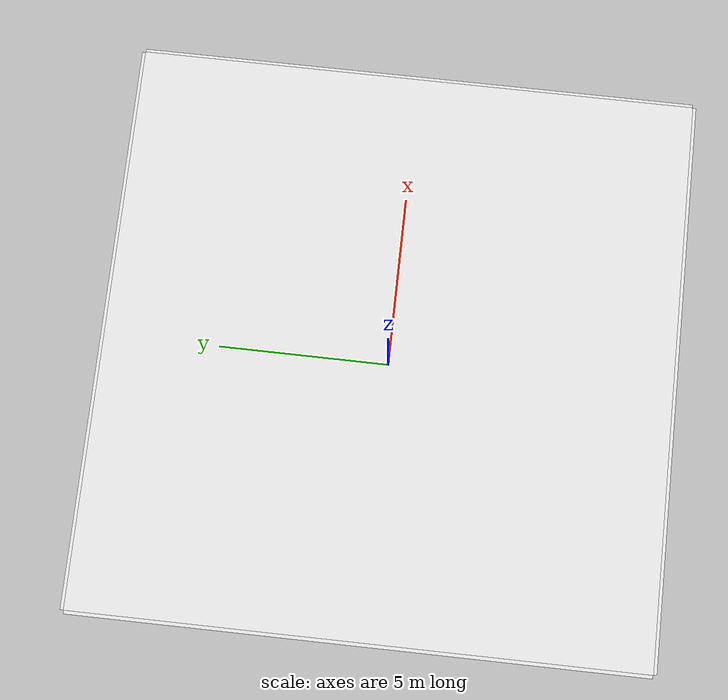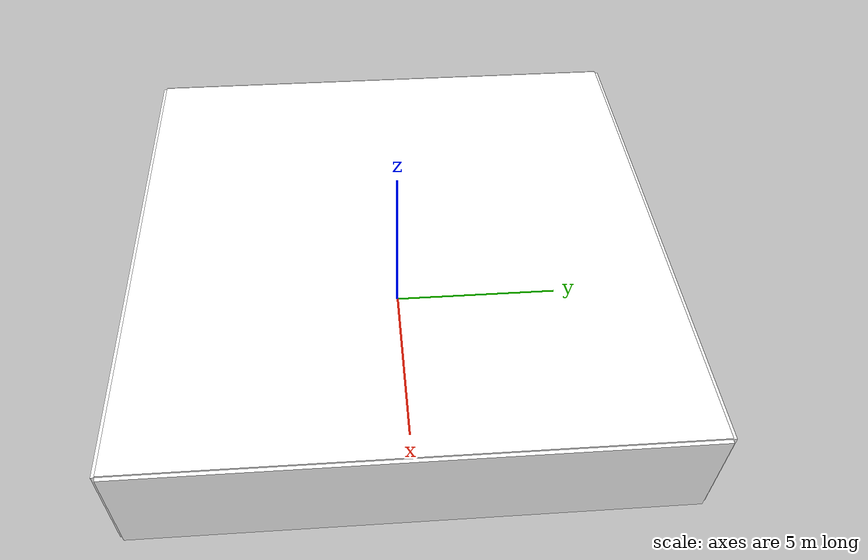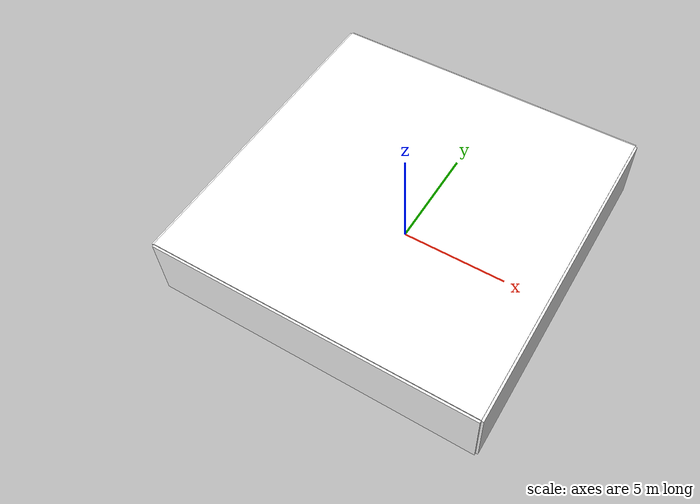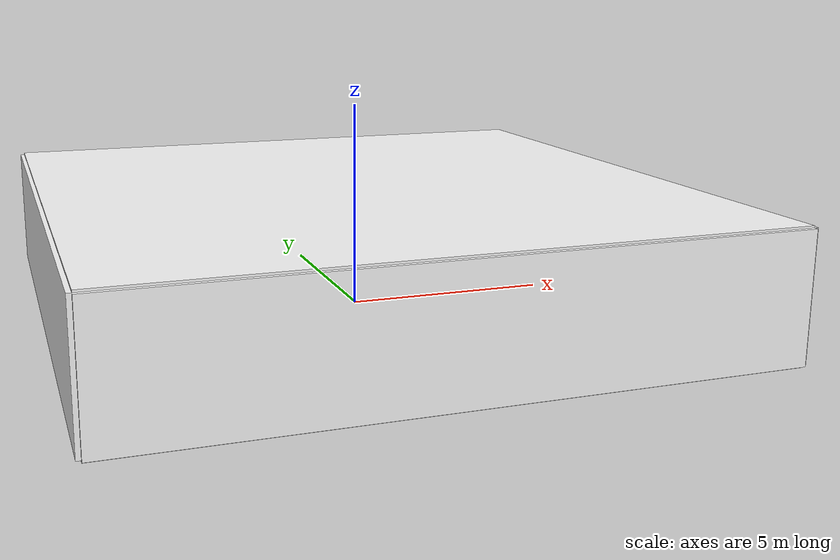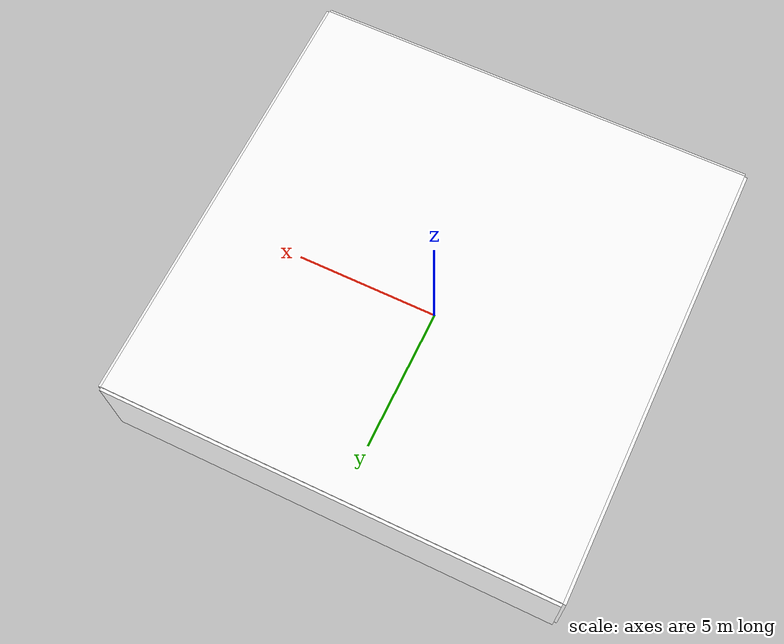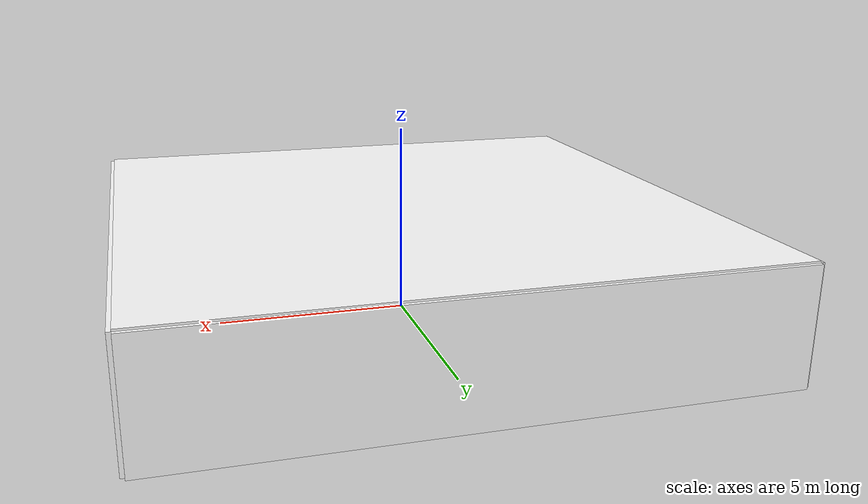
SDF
<?xml version="1.0" ?>
<sdf version="1.6">
  <world name="white_room_world">
    <physics name="default" type="ode">
      <max_step_size>0.001</max_step_size>
      <real_time_factor>1.0</real_time_factor>
    </physics>

    <scene>
      <ambient>0.8 0.8 0.8</ambient>
      <background>0.9 0.9 0.9</background>
      <shadows>true</shadows>
    </scene>

    <!-- Main lighting -->
    <light type="directional" name="sun">
      <cast_shadows>true</cast_shadows>
      <pose>0 0 10 0 0 0</pose>
      <diffuse>0.9 0.9 0.9 1</diffuse>
      <specular>0.3 0.3 0.3 1</specular>
      <attenuation>
        <range>1000</range>
        <constant>0.9</constant>
        <linear>0.01</linear>
        <quadratic>0.001</quadratic>
      </attenuation>
      <direction>-0.3 0.1 -0.9</direction>
    </light>

    <!-- Additional ceiling lights for better interior lighting -->
    <light type="point" name="ceiling_light_1">
      <pose>3 3 2.8 0 0 0</pose>
      <diffuse>0.7 0.7 0.7 1</diffuse>
      <specular>0.2 0.2 0.2 1</specular>
      <attenuation>
        <range>10</range>
        <constant>0.5</constant>
        <linear>0.1</linear>
        <quadratic>0.01</quadratic>
      </attenuation>
    </light>

    <light type="point" name="ceiling_light_2">
      <pose>-3 3 2.8 0 0 0</pose>
      <diffuse>0.7 0.7 0.7 1</diffuse>
      <specular>0.2 0.2 0.2 1</specular>
      <attenuation>
        <range>10</range>
        <constant>0.5</constant>
        <linear>0.1</linear>
        <quadratic>0.01</quadratic>
      </attenuation>
    </light>

    <light type="point" name="ceiling_light_3">
      <pose>3 -3 2.8 0 0 0</pose>
      <diffuse>0.7 0.7 0.7 1</diffuse>
      <specular>0.2 0.2 0.2 1</specular>
      <attenuation>
        <range>10</range>
        <constant>0.5</constant>
        <linear>0.1</linear>
        <quadratic>0.01</quadratic>
      </attenuation>
    </light>

    <light type="point" name="ceiling_light_4">
      <pose>-3 -3 2.8 0 0 0</pose>
      <diffuse>0.7 0.7 0.7 1</diffuse>
      <specular>0.2 0.2 0.2 1</specular>
      <attenuation>
        <range>10</range>
        <constant>0.5</constant>
        <linear>0.1</linear>
        <quadratic>0.01</quadratic>
      </attenuation>
    </light>

    <!-- White floor (15x15m) -->
    <model name="floor">
      <static>true</static>
      <pose>0 0 0 0 0 0</pose>
      <link name="floor_link">
        <collision name="floor_collision">
          <geometry>
            <box>
              <size>15 15 0.1</size>
            </box>
          </geometry>
        </collision>
        <visual name="floor_visual">
          <geometry>
            <box>
              <size>15 15 0.1</size>
            </box>
          </geometry>
          <material>
            <ambient>0.95 0.95 0.95 1</ambient>
            <diffuse>0.95 0.95 0.95 1</diffuse>
            <specular>0.1 0.1 0.1 1</specular>
          </material>
        </visual>
      </link>
    </model>

    <!-- Walls -->
    <!-- North wall -->
    <model name="north_wall">
      <static>true</static>
      <pose>0 7.5 1.5 0 0 0</pose>
      <link name="wall_link">
        <collision name="wall_collision">
          <geometry>
            <box>
              <size>15 0.2 3</size>
            </box>
          </geometry>
        </collision>
        <visual name="wall_visual">
          <geometry>
            <box>
              <size>15 0.2 3</size>
            </box>
          </geometry>
          <material>
            <ambient>0.98 0.98 0.98 1</ambient>
            <diffuse>0.98 0.98 0.98 1</diffuse>
            <specular>0.1 0.1 0.1 1</specular>
          </material>
        </visual>
      </link>
    </model>

    <!-- South wall -->
    <model name="south_wall">
      <static>true</static>
      <pose>0 -7.5 1.5 0 0 0</pose>
      <link name="wall_link">
        <collision name="wall_collision">
          <geometry>
            <box>
              <size>15 0.2 3</size>
            </box>
          </geometry>
        </collision>
        <visual name="wall_visual">
          <geometry>
            <box>
              <size>15 0.2 3</size>
            </box>
          </geometry>
          <material>
            <ambient>0.98 0.98 0.98 1</ambient>
            <diffuse>0.98 0.98 0.98 1</diffuse>
            <specular>0.1 0.1 0.1 1</specular>
          </material>
        </visual>
      </link>
    </model>

    <!-- East wall -->
    <model name="east_wall">
      <static>true</static>
      <pose>7.5 0 1.5 0 0 0</pose>
      <link name="wall_link">
        <collision name="wall_collision">
          <geometry>
            <box>
              <size>0.2 15 3</size>
            </box>
          </geometry>
        </collision>
        <visual name="wall_visual">
          <geometry>
            <box>
              <size>0.2 15 3</size>
            </box>
          </geometry>
          <material>
            <ambient>0.98 0.98 0.98 1</ambient>
            <diffuse>0.98 0.98 0.98 1</diffuse>
            <specular>0.1 0.1 0.1 1</specular>
          </material>
        </visual>
      </link>
    </model>

    <!-- West wall -->
    <model name="west_wall">
      <static>true</static>
      <pose>-7.5 0 1.5 0 0 0</pose>
      <link name="wall_link">
        <collision name="wall_collision">
          <geometry>
            <box>
              <size>0.2 15 3</size>
            </box>
          </geometry>
        </collision>
        <visual name="wall_visual">
          <geometry>
            <box>
              <size>0.2 15 3</size>
            </box>
          </geometry>
          <material>
            <ambient>0.98 0.98 0.98 1</ambient>
            <diffuse>0.98 0.98 0.98 1</diffuse>
            <specular>0.1 0.1 0.1 1</specular>
          </material>
        </visual>
      </link>
    </model>

    <!-- Ceiling -->
    <model name="ceiling">
      <static>true</static>
      <pose>0 0 3 0 0 0</pose>
      <link name="ceiling_link">
        <collision name="ceiling_collision">
          <geometry>
            <box>
              <size>15 15 0.1</size>
            </box>
          </geometry>
        </collision>
        <visual name="ceiling_visual">
          <geometry>
            <box>
              <size>15 15 0.1</size>
            </box>
          </geometry>
          <material>
            <ambient>0.98 0.98 0.98 1</ambient>
            <diffuse>0.98 0.98 0.98 1</diffuse>
            <specular>0.1 0.1 0.1 1</specular>
          </material>
        </visual>
      </link>
    </model>

    <!-- Furniture Models -->

    <!-- Couch 1 (L-shaped, main seating area) -->
    <model name="couch_1">
      <static>true</static>
      <pose>-4 4 0.4 0 0 0</pose>
      <link name="couch_link">
        <!-- Main couch body -->
        <visual name="couch_body">
          <geometry>
            <box>
              <size>2.5 1 0.8</size>
            </box>
          </geometry>
          <material>
            <ambient>0.4 0.4 0.4 1</ambient>
            <diffuse>0.4 0.4 0.4 1</diffuse>
            <specular>0.1 0.1 0.1 1</specular>
          </material>
        </visual>
        <collision name="couch_collision">
          <geometry>
            <box>
              <size>2.5 1 0.8</size>
            </box>
          </geometry>
        </collision>

        <!-- Couch back -->
        <visual name="couch_back">
          <pose>0 -0.45 0.4 0 0 0</pose>
          <geometry>
            <box>
              <size>2.5 0.1 0.8</size>
            </box>
          </geometry>
          <material>
            <ambient>0.35 0.35 0.35 1</ambient>
            <diffuse>0.35 0.35 0.35 1</diffuse>
          </material>
        </visual>

        <!-- Couch arms -->
        <visual name="couch_arm_left">
          <pose>-1.2 0 0.2 0 0 0</pose>
          <geometry>
            <box>
              <size>0.1 1 0.4</size>
            </box>
          </geometry>
          <material>
            <ambient>0.35 0.35 0.35 1</ambient>
            <diffuse>0.35 0.35 0.35 1</diffuse>
          </material>
        </visual>

        <visual name="couch_arm_right">
          <pose>1.2 0 0.2 0 0 0</pose>
          <geometry>
            <box>
              <size>0.1 1 0.4</size>
            </box>
          </geometry>
          <material>
            <ambient>0.35 0.35 0.35 1</ambient>
            <diffuse>0.35 0.35 0.35 1</diffuse>
          </material>
        </visual>
      </link>
    </model>

    <!-- Couch 2 (smaller, opposite side) -->
    <model name="couch_2">
      <static>true</static>
      <pose>4 -3 0.4 0 0 1.57</pose>
      <link name="couch_link">
        <visual name="couch_body">
          <geometry>
            <box>
              <size>2 1 0.8</size>
            </box>
          </geometry>
          <material>
            <ambient>0.3 0.3 0.5 1</ambient>
            <diffuse>0.3 0.3 0.5 1</diffuse>
            <specular>0.1 0.1 0.1 1</specular>
          </material>
        </visual>
        <collision name="couch_collision">
          <geometry>
            <box>
              <size>2 1 0.8</size>
            </box>
          </geometry>
        </collision>

        <visual name="couch_back">
          <pose>0 -0.45 0.4 0 0 0</pose>
          <geometry>
            <box>
              <size>2 0.1 0.8</size>
            </box>
          </geometry>
          <material>
            <ambient>0.25 0.25 0.45 1</ambient>
            <diffuse>0.25 0.25 0.45 1</diffuse>
          </material>
        </visual>
      </link>
    </model>

    <!-- Coffee Table (center) -->
    <model name="coffee_table">
      <static>true</static>
      <pose>0 1 0.4 0 0 0</pose>
      <link name="table_link">
        <!-- Table top -->
        <visual name="table_top">
          <geometry>
            <box>
              <size>1.2 0.8 0.05</size>
            </box>
          </geometry>
          <material>
            <ambient>0.6 0.4 0.2 1</ambient>
            <diffuse>0.6 0.4 0.2 1</diffuse>
            <specular>0.3 0.3 0.3 1</specular>
          </material>
        </visual>
        <collision name="table_collision">
          <geometry>
            <box>
              <size>1.2 0.8 0.05</size>
            </box>
          </geometry>
        </collision>

        <!-- Table legs -->
        <visual name="leg_1">
          <pose>0.5 0.35 -0.2 0 0 0</pose>
          <geometry>
            <cylinder>
              <radius>0.03</radius>
              <length>0.4</length>
            </cylinder>
          </geometry>
          <material>
            <ambient>0.5 0.3 0.1 1</ambient>
            <diffuse>0.5 0.3 0.1 1</diffuse>
          </material>
        </visual>

        <visual name="leg_2">
          <pose>-0.5 0.35 -0.2 0 0 0</pose>
          <geometry>
            <cylinder>
              <radius>0.03</radius>
              <length>0.4</length>
            </cylinder>
          </geometry>
          <material>
            <ambient>0.5 0.3 0.1 1</ambient>
            <diffuse>0.5 0.3 0.1 1</diffuse>
          </material>
        </visual>

        <visual name="leg_3">
          <pose>0.5 -0.35 -0.2 0 0 0</pose>
          <geometry>
            <cylinder>
              <radius>0.03</radius>
              <length>0.4</length>
            </cylinder>
          </geometry>
          <material>
            <ambient>0.5 0.3 0.1 1</ambient>
            <diffuse>0.5 0.3 0.1 1</diffuse>
          </material>
        </visual>

        <visual name="leg_4">
          <pose>-0.5 -0.35 -0.2 0 0 0</pose>
          <geometry>
            <cylinder>
              <radius>0.03</radius>
              <length>0.4</length>
            </cylinder>
          </geometry>
          <material>
            <ambient>0.5 0.3 0.1 1</ambient>
            <diffuse>0.5 0.3 0.1 1</diffuse>
          </material>
        </visual>
      </link>
    </model>

    <!-- Dining Table -->
    <model name="dining_table">
      <static>true</static>
      <pose>-4 -4 0.75 0 0 0</pose>
      <link name="table_link">
        <visual name="table_top">
          <geometry>
            <box>
              <size>2 1.2 0.05</size>
            </box>
          </geometry>
          <material>
            <ambient>0.7 0.5 0.3 1</ambient>
            <diffuse>0.7 0.5 0.3 1</diffuse>
            <specular>0.4 0.4 0.4 1</specular>
          </material>
        </visual>
        <collision name="table_collision">
          <geometry>
            <box>
              <size>2 1.2 0.05</size>
            </box>
          </geometry>
        </collision>

        <!-- Central pedestal -->
        <visual name="pedestal">
          <pose>0 0 -0.375 0 0 0</pose>
          <geometry>
            <cylinder>
              <radius>0.3</radius>
              <length>0.75</length>
            </cylinder>
          </geometry>
          <material>
            <ambient>0.6 0.4 0.2 1</ambient>
            <diffuse>0.6 0.4 0.2 1</diffuse>
          </material>
        </visual>
      </link>
    </model>

    <!-- Side Table -->
    <model name="side_table">
      <static>true</static>
      <pose>6 5 0.6 0 0 0</pose>
      <link name="table_link">
        <visual name="table_top">
          <geometry>
            <box>
              <size>0.6 0.6 0.04</size>
            </box>
          </geometry>
          <material>
            <ambient>0.8 0.8 0.8 1</ambient>
            <diffuse>0.8 0.8 0.8 1</diffuse>
            <specular>0.2 0.2 0.2 1</specular>
          </material>
        </visual>
        <collision name="table_collision">
          <geometry>
            <box>
              <size>0.6 0.6 0.04</size>
            </box>
          </geometry>
        </collision>

        <!-- Table legs -->
        <visual name="leg_1">
          <pose>0.25 0.25 -0.3 0 0 0</pose>
          <geometry>
            <box>
              <size>0.04 0.04 0.6</size>
            </box>
          </geometry>
          <material>
            <ambient>0.7 0.7 0.7 1</ambient>
            <diffuse>0.7 0.7 0.7 1</diffuse>
          </material>
        </visual>

        <visual name="leg_2">
          <pose>-0.25 0.25 -0.3 0 0 0</pose>
          <geometry>
            <box>
              <size>0.04 0.04 0.6</size>
            </box>
          </geometry>
          <material>
            <ambient>0.7 0.7 0.7 1</ambient>
            <diffuse>0.7 0.7 0.7 1</diffuse>
          </material>
        </visual>

        <visual name="leg_3">
          <pose>0.25 -0.25 -0.3 0 0 0</pose>
          <geometry>
            <box>
              <size>0.04 0.04 0.6</size>
            </box>
          </geometry>
          <material>
            <ambient>0.7 0.7 0.7 1</ambient>
            <diffuse>0.7 0.7 0.7 1</diffuse>
          </material>
        </visual>

        <visual name="leg_4">
          <pose>-0.25 -0.25 -0.3 0 0 0</pose>
          <geometry>
            <box>
              <size>0.04 0.04 0.6</size>
            </box>
          </geometry>
          <material>
            <ambient>0.7 0.7 0.7 1</ambient>
            <diffuse>0.7 0.7 0.7 1</diffuse>
          </material>
        </visual>
      </link>
    </model>

  </world>
</sdf>
